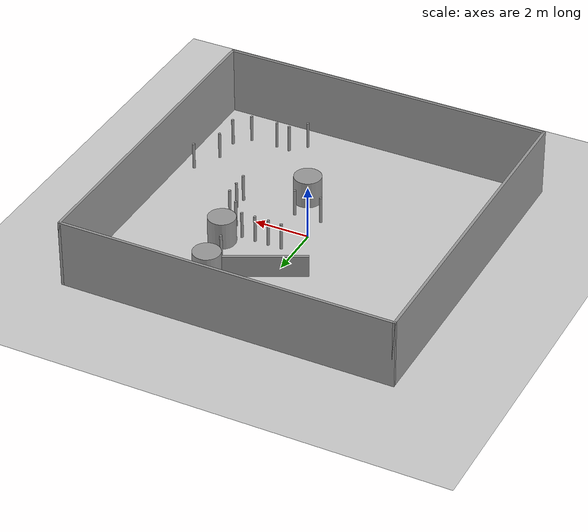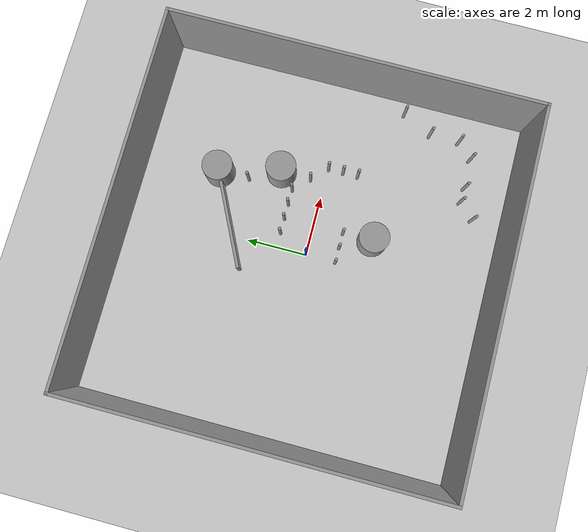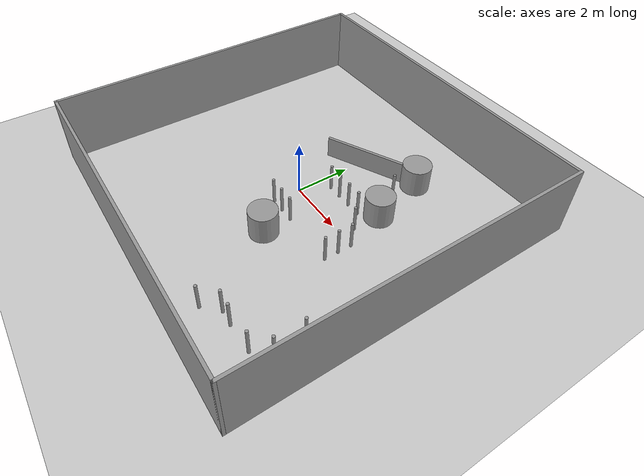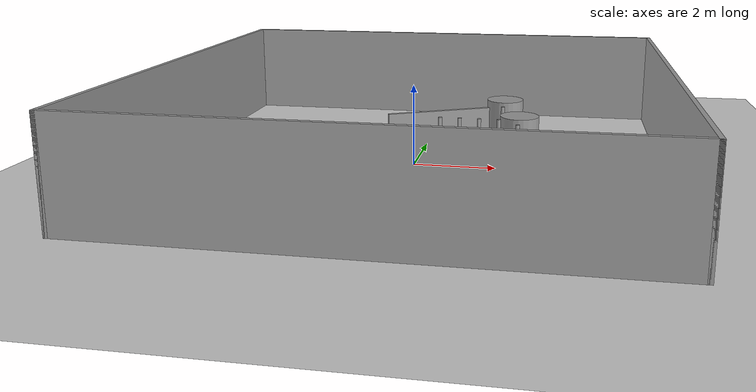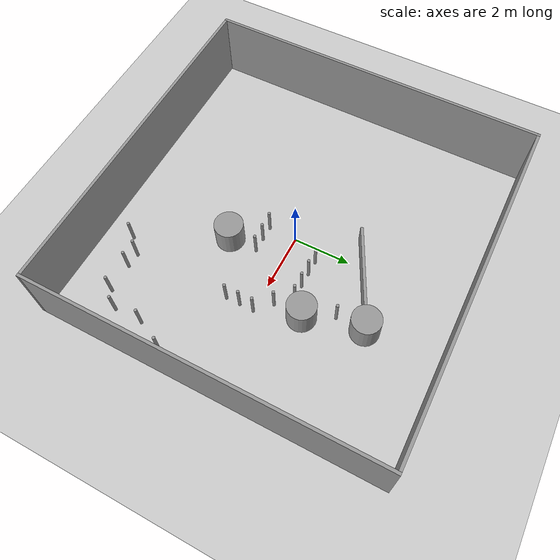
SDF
<sdf version="1.7">
 <world name="default">
  <model name="ground_plane">
   <static>1</static>
   <link name="link">
    <collision name="collision">
     <geometry><plane><normal>0 0 1</normal><size>100 100</size></plane></geometry>
     <surface>
      <contact><collide_bitmask>65535</collide_bitmask></contact>
      <friction><ode><mu>100</mu><mu2>50</mu2></ode></friction>
     </surface>
    </collision>
    <visual name="visual">
     <cast_shadows>0</cast_shadows>
     <geometry><plane><normal>0 0 1</normal><size>100 100</size></plane></geometry>
     <material>
      <script><uri>file://media/materials/scripts/gazebo.material</uri><name>Gazebo/Grey</name></script>
     </material>
    </visual>
   </link>
  </model>
  <model name="Cylindar_r01_clone_0">
   <link name="link_0">
    <inertial>
     <mass>1</mass>
     <inertia><ixx>0.145833</ixx><ixy>0</ixy><ixz>0</ixz><iyy>0.145833</iyy><iyz>0</iyz><izz>0.125</izz></inertia>
    </inertial>
    <visual name="visual">
     <geometry><cylinder><radius>0.05</radius><length>1</length></cylinder></geometry>
     <material>
      <lighting>1</lighting>
      <script><uri>file://media/materials/scripts/gazebo.material</uri><name>Gazebo/Grey</name></script>
      <shader type="pixel"><normal_map>__default__</normal_map></shader>
      <ambient>0.3 0.3 0.3 1</ambient>
      <diffuse>0.7 0.7 0.7 1</diffuse>
      <specular>0.01 0.01 0.01 1</specular>
      <emissive>0 0 0 1</emissive>
     </material>
    </visual>
    <collision name="collision">
     <geometry><cylinder><radius>0.05</radius><length>1</length></cylinder></geometry>
     <surface>
      <friction>
       <ode><mu>1</mu><mu2>1</mu2><fdir1>0 0 0</fdir1><slip1>0</slip1><slip2>0</slip2></ode>
       <torsional>
        <coefficient>1</coefficient>
        <patch_radius>0</patch_radius>
        <surface_radius>0</surface_radius>
        <use_patch_radius>1</use_patch_radius>
        <ode><slip>0</slip></ode>
       </torsional>
      </friction>
      <bounce><restitution_coefficient>0</restitution_coefficient><threshold>1e+06</threshold></bounce>
      <contact>
       <collide_without_contact>0</collide_without_contact>
       <collide_without_contact_bitmask>1</collide_without_contact_bitmask>
       <collide_bitmask>1</collide_bitmask>
       <ode>
        <soft_cfm>0</soft_cfm>
        <soft_erp>0.2</soft_erp>
        <kp>1e+13</kp>
        <kd>1</kd>
        <max_vel>0.01</max_vel>
        <min_depth>0</min_depth>
       </ode>
       <bullet>
        <split_impulse>1</split_impulse>
        <split_impulse_penetration_threshold>-0.01</split_impulse_penetration_threshold>
        <soft_cfm>0</soft_cfm>
        <soft_erp>0.2</soft_erp>
        <kp>1e+13</kp>
        <kd>1</kd>
       </bullet>
      </contact>
     </surface>
    </collision>
   </link>
   <static>0</static>
   <pose>0.5 1 0.5 0 -0 0</pose>
  </model>
  <model name="Cylindar_r01_clone_1">
   <link name="link_0">
    <inertial>
     <mass>1</mass>
     <inertia><ixx>0.145833</ixx><ixy>0</ixy><ixz>0</ixz><iyy>0.145833</iyy><iyz>0</iyz><izz>0.125</izz></inertia>
    </inertial>
    <visual name="visual">
     <geometry><cylinder><radius>0.05</radius><length>1</length></cylinder></geometry>
     <material>
      <lighting>1</lighting>
      <script><uri>file://media/materials/scripts/gazebo.material</uri><name>Gazebo/Grey</name></script>
      <shader type="pixel"><normal_map>__default__</normal_map></shader>
      <ambient>0.3 0.3 0.3 1</ambient>
      <diffuse>0.7 0.7 0.7 1</diffuse>
      <specular>0.01 0.01 0.01 1</specular>
      <emissive>0 0 0 1</emissive>
     </material>
    </visual>
    <collision name="collision">
     <geometry><cylinder><radius>0.05</radius><length>1</length></cylinder></geometry>
     <surface>
      <friction>
       <ode><mu>1</mu><mu2>1</mu2><fdir1>0 0 0</fdir1><slip1>0</slip1><slip2>0</slip2></ode>
       <torsional>
        <coefficient>1</coefficient>
        <patch_radius>0</patch_radius>
        <surface_radius>0</surface_radius>
        <use_patch_radius>1</use_patch_radius>
        <ode><slip>0</slip></ode>
       </torsional>
      </friction>
      <bounce><restitution_coefficient>0</restitution_coefficient><threshold>1e+06</threshold></bounce>
      <contact>
       <collide_without_contact>0</collide_without_contact>
       <collide_without_contact_bitmask>1</collide_without_contact_bitmask>
       <collide_bitmask>1</collide_bitmask>
       <ode>
        <soft_cfm>0</soft_cfm>
        <soft_erp>0.2</soft_erp>
        <kp>1e+13</kp>
        <kd>1</kd>
        <max_vel>0.01</max_vel>
        <min_depth>0</min_depth>
       </ode>
       <bullet>
        <split_impulse>1</split_impulse>
        <split_impulse_penetration_threshold>-0.01</split_impulse_penetration_threshold>
        <soft_cfm>0</soft_cfm>
        <soft_erp>0.2</soft_erp>
        <kp>1e+13</kp>
        <kd>1</kd>
       </bullet>
      </contact>
     </surface>
    </collision>
   </link>
   <static>0</static>
   <pose>1.5 1 0.5 0 -0 0</pose>
  </model>
  <model name="Cylindar_r01_clone_2">
   <link name="link_0">
    <inertial>
     <mass>1</mass>
     <inertia><ixx>0.145833</ixx><ixy>0</ixy><ixz>0</ixz><iyy>0.145833</iyy><iyz>0</iyz><izz>0.125</izz></inertia>
    </inertial>
    <visual name="visual">
     <geometry><cylinder><radius>0.05</radius><length>1</length></cylinder></geometry>
     <material>
      <lighting>1</lighting>
      <script><uri>file://media/materials/scripts/gazebo.material</uri><name>Gazebo/Grey</name></script>
      <shader type="pixel"><normal_map>__default__</normal_map></shader>
      <ambient>0.3 0.3 0.3 1</ambient>
      <diffuse>0.7 0.7 0.7 1</diffuse>
      <specular>0.01 0.01 0.01 1</specular>
      <emissive>0 0 0 1</emissive>
     </material>
    </visual>
    <collision name="collision">
     <geometry><cylinder><radius>0.05</radius><length>1</length></cylinder></geometry>
     <surface>
      <friction>
       <ode><mu>1</mu><mu2>1</mu2><fdir1>0 0 0</fdir1><slip1>0</slip1><slip2>0</slip2></ode>
       <torsional>
        <coefficient>1</coefficient>
        <patch_radius>0</patch_radius>
        <surface_radius>0</surface_radius>
        <use_patch_radius>1</use_patch_radius>
        <ode><slip>0</slip></ode>
       </torsional>
      </friction>
      <bounce><restitution_coefficient>0</restitution_coefficient><threshold>1e+06</threshold></bounce>
      <contact>
       <collide_without_contact>0</collide_without_contact>
       <collide_without_contact_bitmask>1</collide_without_contact_bitmask>
       <collide_bitmask>1</collide_bitmask>
       <ode>
        <soft_cfm>0</soft_cfm>
        <soft_erp>0.2</soft_erp>
        <kp>1e+13</kp>
        <kd>1</kd>
        <max_vel>0.01</max_vel>
        <min_depth>0</min_depth>
       </ode>
       <bullet>
        <split_impulse>1</split_impulse>
        <split_impulse_penetration_threshold>-0.01</split_impulse_penetration_threshold>
        <soft_cfm>0</soft_cfm>
        <soft_erp>0.2</soft_erp>
        <kp>1e+13</kp>
        <kd>1</kd>
       </bullet>
      </contact>
     </surface>
    </collision>
   </link>
   <static>0</static>
   <pose>2 1 0.5 0 -0 0</pose>
  </model>
  <model name="Cylindar_r01_clone_7">
   <link name="link_0">
    <inertial>
     <mass>1</mass>
     <inertia><ixx>0.145833</ixx><ixy>0</ixy><ixz>0</ixz><iyy>0.145833</iyy><iyz>0</iyz><izz>0.125</izz></inertia>
    </inertial>
    <visual name="visual">
     <geometry><cylinder><radius>0.05</radius><length>1</length></cylinder></geometry>
     <material>
      <lighting>1</lighting>
      <script><uri>file://media/materials/scripts/gazebo.material</uri><name>Gazebo/Grey</name></script>
      <shader type="pixel"><normal_map>__default__</normal_map></shader>
      <ambient>0.3 0.3 0.3 1</ambient>
      <diffuse>0.7 0.7 0.7 1</diffuse>
      <specular>0.01 0.01 0.01 1</specular>
      <emissive>0 0 0 1</emissive>
     </material>
    </visual>
    <collision name="collision">
     <geometry><cylinder><radius>0.05</radius><length>1</length></cylinder></geometry>
     <surface>
      <friction>
       <ode><mu>1</mu><mu2>1</mu2><fdir1>0 0 0</fdir1><slip1>0</slip1><slip2>0</slip2></ode>
       <torsional>
        <coefficient>1</coefficient>
        <patch_radius>0</patch_radius>
        <surface_radius>0</surface_radius>
        <use_patch_radius>1</use_patch_radius>
        <ode><slip>0</slip></ode>
       </torsional>
      </friction>
      <bounce><restitution_coefficient>0</restitution_coefficient><threshold>1e+06</threshold></bounce>
      <contact>
       <collide_without_contact>0</collide_without_contact>
       <collide_without_contact_bitmask>1</collide_without_contact_bitmask>
       <collide_bitmask>1</collide_bitmask>
       <ode>
        <soft_cfm>0</soft_cfm>
        <soft_erp>0.2</soft_erp>
        <kp>1e+13</kp>
        <kd>1</kd>
        <max_vel>0.01</max_vel>
        <min_depth>0</min_depth>
       </ode>
       <bullet>
        <split_impulse>1</split_impulse>
        <split_impulse_penetration_threshold>-0.01</split_impulse_penetration_threshold>
        <soft_cfm>0</soft_cfm>
        <soft_erp>0.2</soft_erp>
        <kp>1e+13</kp>
        <kd>1</kd>
       </bullet>
      </contact>
     </surface>
    </collision>
   </link>
   <static>0</static>
   <pose>1 -1 0.5 0 -0 0</pose>
  </model>
  <model name="Cylindar_r01_clone_8">
   <link name="link_0">
    <inertial>
     <mass>1</mass>
     <inertia><ixx>0.145833</ixx><ixy>0</ixy><ixz>0</ixz><iyy>0.145833</iyy><iyz>0</iyz><izz>0.125</izz></inertia>
    </inertial>
    <visual name="visual">
     <geometry><cylinder><radius>0.05</radius><length>1</length></cylinder></geometry>
     <material>
      <lighting>1</lighting>
      <script><uri>file://media/materials/scripts/gazebo.material</uri><name>Gazebo/Grey</name></script>
      <shader type="pixel"><normal_map>__default__</normal_map></shader>
      <ambient>0.3 0.3 0.3 1</ambient>
      <diffuse>0.7 0.7 0.7 1</diffuse>
      <specular>0.01 0.01 0.01 1</specular>
      <emissive>0 0 0 1</emissive>
     </material>
    </visual>
    <collision name="collision">
     <geometry><cylinder><radius>0.05</radius><length>1</length></cylinder></geometry>
     <surface>
      <friction>
       <ode><mu>1</mu><mu2>1</mu2><fdir1>0 0 0</fdir1><slip1>0</slip1><slip2>0</slip2></ode>
       <torsional>
        <coefficient>1</coefficient>
        <patch_radius>0</patch_radius>
        <surface_radius>0</surface_radius>
        <use_patch_radius>1</use_patch_radius>
        <ode><slip>0</slip></ode>
       </torsional>
      </friction>
      <bounce><restitution_coefficient>0</restitution_coefficient><threshold>1e+06</threshold></bounce>
      <contact>
       <collide_without_contact>0</collide_without_contact>
       <collide_without_contact_bitmask>1</collide_without_contact_bitmask>
       <collide_bitmask>1</collide_bitmask>
       <ode>
        <soft_cfm>0</soft_cfm>
        <soft_erp>0.2</soft_erp>
        <kp>1e+13</kp>
        <kd>1</kd>
        <max_vel>0.01</max_vel>
        <min_depth>0</min_depth>
       </ode>
       <bullet>
        <split_impulse>1</split_impulse>
        <split_impulse_penetration_threshold>-0.01</split_impulse_penetration_threshold>
        <soft_cfm>0</soft_cfm>
        <soft_erp>0.2</soft_erp>
        <kp>1e+13</kp>
        <kd>1</kd>
       </bullet>
      </contact>
     </surface>
    </collision>
   </link>
   <static>0</static>
   <pose>0.5 -1 0.5 0 -0 0</pose>
  </model>
  <model name="Cylindar_r01_clone_9">
   <link name="link_0">
    <inertial>
     <mass>1</mass>
     <inertia><ixx>0.145833</ixx><ixy>0</ixy><ixz>0</ixz><iyy>0.145833</iyy><iyz>0</iyz><izz>0.125</izz></inertia>
    </inertial>
    <visual name="visual">
     <geometry><cylinder><radius>0.05</radius><length>1</length></cylinder></geometry>
     <material>
      <lighting>1</lighting>
      <script><uri>file://media/materials/scripts/gazebo.material</uri><name>Gazebo/Grey</name></script>
      <shader type="pixel"><normal_map>__default__</normal_map></shader>
      <ambient>0.3 0.3 0.3 1</ambient>
      <diffuse>0.7 0.7 0.7 1</diffuse>
      <specular>0.01 0.01 0.01 1</specular>
      <emissive>0 0 0 1</emissive>
     </material>
    </visual>
    <collision name="collision">
     <geometry><cylinder><radius>0.05</radius><length>1</length></cylinder></geometry>
     <surface>
      <friction>
       <ode><mu>1</mu><mu2>1</mu2><fdir1>0 0 0</fdir1><slip1>0</slip1><slip2>0</slip2></ode>
       <torsional>
        <coefficient>1</coefficient>
        <patch_radius>0</patch_radius>
        <surface_radius>0</surface_radius>
        <use_patch_radius>1</use_patch_radius>
        <ode><slip>0</slip></ode>
       </torsional>
      </friction>
      <bounce><restitution_coefficient>0</restitution_coefficient><threshold>1e+06</threshold></bounce>
      <contact>
       <collide_without_contact>0</collide_without_contact>
       <collide_without_contact_bitmask>1</collide_without_contact_bitmask>
       <collide_bitmask>1</collide_bitmask>
       <ode>
        <soft_cfm>0</soft_cfm>
        <soft_erp>0.2</soft_erp>
        <kp>1e+13</kp>
        <kd>1</kd>
        <max_vel>0.01</max_vel>
        <min_depth>0</min_depth>
       </ode>
       <bullet>
        <split_impulse>1</split_impulse>
        <split_impulse_penetration_threshold>-0.01</split_impulse_penetration_threshold>
        <soft_cfm>0</soft_cfm>
        <soft_erp>0.2</soft_erp>
        <kp>1e+13</kp>
        <kd>1</kd>
       </bullet>
      </contact>
     </surface>
    </collision>
   </link>
   <static>0</static>
   <pose>0 -1 0.5 0 -0 0</pose>
  </model>
  <model name="wall_square">
   <link name="Wall_10">
    <collision name="Wall_10_Collision">
     <geometry><box><size>12.2 0.1 2.5</size></box></geometry>
     <pose>0 0 1.25 0 -0 0</pose>
    </collision>
    <visual name="Wall_10_Visual">
     <pose>0 0 1.25 0 -0 0</pose>
     <geometry><box><size>12.2 0.1 2.5</size></box></geometry>
     <material>
      <script><uri>file://media/materials/scripts/gazebo.material</uri><name>Gazebo/Grey</name></script>
      <ambient>1 1 1 1</ambient>
     </material>
     <meta><layer>0</layer></meta>
    </visual>
    <pose>6.05 0 0 0 -0 -1.5708</pose>
   </link>
   <link name="Wall_4">
    <collision name="Wall_4_Collision">
     <geometry><box><size>12.2 0.1 2.5</size></box></geometry>
     <pose>0 0 1.25 0 -0 0</pose>
    </collision>
    <visual name="Wall_4_Visual">
     <pose>0 0 1.25 0 -0 0</pose>
     <geometry><box><size>12.2 0.1 2.5</size></box></geometry>
     <material>
      <script><uri>file://media/materials/scripts/gazebo.material</uri><name>Gazebo/Grey</name></script>
      <ambient>1 1 1 1</ambient>
     </material>
     <meta><layer>0</layer></meta>
    </visual>
    <pose>0 6.05 0 0 -0 0</pose>
   </link>
   <link name="Wall_6">
    <collision name="Wall_6_Collision">
     <geometry><box><size>12.2 0.1 2.5</size></box></geometry>
     <pose>0 0 1.25 0 -0 0</pose>
    </collision>
    <visual name="Wall_6_Visual">
     <pose>0 0 1.25 0 -0 0</pose>
     <geometry><box><size>12.2 0.1 2.5</size></box></geometry>
     <material>
      <script><uri>file://media/materials/scripts/gazebo.material</uri><name>Gazebo/Grey</name></script>
      <ambient>1 1 1 1</ambient>
     </material>
     <meta><layer>0</layer></meta>
    </visual>
    <pose>-6.05 0 0 0 -0 -1.5708</pose>
   </link>
   <link name="Wall_8">
    <collision name="Wall_8_Collision">
     <geometry><box><size>12.2 0.1 2.5</size></box></geometry>
     <pose>0 0 1.25 0 -0 0</pose>
    </collision>
    <visual name="Wall_8_Visual">
     <pose>0 0 1.25 0 -0 0</pose>
     <geometry><box><size>12.2 0.1 2.5</size></box></geometry>
     <material>
      <script><uri>file://media/materials/scripts/gazebo.material</uri><name>Gazebo/Grey</name></script>
      <ambient>1 1 1 1</ambient>
     </material>
     <meta><layer>0</layer></meta>
    </visual>
    <pose>0 -6.05 0 0 -0 0</pose>
   </link>
   <static>1</static>
  </model>
  <model name="Cylindar_r01_clone_2_clone">
   <link name="link_0">
    <inertial>
     <mass>1</mass>
     <inertia><ixx>0.145833</ixx><ixy>0</ixy><ixz>0</ixz><iyy>0.145833</iyy><iyz>0</iyz><izz>0.125</izz></inertia>
    </inertial>
    <visual name="visual">
     <geometry><cylinder><radius>0.05</radius><length>1</length></cylinder></geometry>
     <material>
      <lighting>1</lighting>
      <script><uri>file://media/materials/scripts/gazebo.material</uri><name>Gazebo/Grey</name></script>
      <shader type="pixel"><normal_map>__default__</normal_map></shader>
      <ambient>0.3 0.3 0.3 1</ambient>
      <diffuse>0.7 0.7 0.7 1</diffuse>
      <specular>0.01 0.01 0.01 1</specular>
      <emissive>0 0 0 1</emissive>
     </material>
    </visual>
    <collision name="collision">
     <geometry><cylinder><radius>0.05</radius><length>1</length></cylinder></geometry>
     <surface>
      <friction>
       <ode><mu>1</mu><mu2>1</mu2><fdir1>0 0 0</fdir1><slip1>0</slip1><slip2>0</slip2></ode>
       <torsional>
        <coefficient>1</coefficient>
        <patch_radius>0</patch_radius>
        <surface_radius>0</surface_radius>
        <use_patch_radius>1</use_patch_radius>
        <ode><slip>0</slip></ode>
       </torsional>
      </friction>
      <bounce><restitution_coefficient>0</restitution_coefficient><threshold>1e+06</threshold></bounce>
      <contact>
       <collide_without_contact>0</collide_without_contact>
       <collide_without_contact_bitmask>1</collide_without_contact_bitmask>
       <collide_bitmask>1</collide_bitmask>
       <ode>
        <soft_cfm>0</soft_cfm>
        <soft_erp>0.2</soft_erp>
        <kp>1e+13</kp>
        <kd>1</kd>
        <max_vel>0.01</max_vel>
        <min_depth>0</min_depth>
       </ode>
       <bullet>
        <split_impulse>1</split_impulse>
        <split_impulse_penetration_threshold>-0.01</split_impulse_penetration_threshold>
        <soft_cfm>0</soft_cfm>
        <soft_erp>0.2</soft_erp>
        <kp>1e+13</kp>
        <kd>1</kd>
       </bullet>
      </contact>
     </surface>
    </collision>
   </link>
   <static>0</static>
   <pose>2.5 0.5 0.5 0 -0 0</pose>
  </model>
  <model name="Cylindar_r01_clone_2_clone_0">
   <link name="link_0">
    <inertial>
     <mass>1</mass>
     <inertia><ixx>0.145833</ixx><ixy>0</ixy><ixz>0</ixz><iyy>0.145833</iyy><iyz>0</iyz><izz>0.125</izz></inertia>
    </inertial>
    <visual name="visual">
     <geometry><cylinder><radius>0.05</radius><length>1</length></cylinder></geometry>
     <material>
      <lighting>1</lighting>
      <script><uri>file://media/materials/scripts/gazebo.material</uri><name>Gazebo/Grey</name></script>
      <shader type="pixel"><normal_map>__default__</normal_map></shader>
      <ambient>0.3 0.3 0.3 1</ambient>
      <diffuse>0.7 0.7 0.7 1</diffuse>
      <specular>0.01 0.01 0.01 1</specular>
      <emissive>0 0 0 1</emissive>
     </material>
    </visual>
    <collision name="collision">
     <geometry><cylinder><radius>0.05</radius><length>1</length></cylinder></geometry>
     <surface>
      <friction>
       <ode><mu>1</mu><mu2>1</mu2><fdir1>0 0 0</fdir1><slip1>0</slip1><slip2>0</slip2></ode>
       <torsional>
        <coefficient>1</coefficient>
        <patch_radius>0</patch_radius>
        <surface_radius>0</surface_radius>
        <use_patch_radius>1</use_patch_radius>
        <ode><slip>0</slip></ode>
       </torsional>
      </friction>
      <bounce><restitution_coefficient>0</restitution_coefficient><threshold>1e+06</threshold></bounce>
      <contact>
       <collide_without_contact>0</collide_without_contact>
       <collide_without_contact_bitmask>1</collide_without_contact_bitmask>
       <collide_bitmask>1</collide_bitmask>
       <ode>
        <soft_cfm>0</soft_cfm>
        <soft_erp>0.2</soft_erp>
        <kp>1e+13</kp>
        <kd>1</kd>
        <max_vel>0.01</max_vel>
        <min_depth>0</min_depth>
       </ode>
       <bullet>
        <split_impulse>1</split_impulse>
        <split_impulse_penetration_threshold>-0.01</split_impulse_penetration_threshold>
        <soft_cfm>0</soft_cfm>
        <soft_erp>0.2</soft_erp>
        <kp>1e+13</kp>
        <kd>1</kd>
       </bullet>
      </contact>
     </surface>
    </collision>
   </link>
   <static>0</static>
   <pose>3 0 0.5 0 -0 0</pose>
  </model>
  <model name="Cylindar_r01_clone_2_clone_1">
   <link name="link_0">
    <inertial>
     <mass>1</mass>
     <inertia><ixx>0.145833</ixx><ixy>0</ixy><ixz>0</ixz><iyy>0.145833</iyy><iyz>0</iyz><izz>0.125</izz></inertia>
    </inertial>
    <visual name="visual">
     <geometry><cylinder><radius>0.05</radius><length>1</length></cylinder></geometry>
     <material>
      <lighting>1</lighting>
      <script><uri>file://media/materials/scripts/gazebo.material</uri><name>Gazebo/Grey</name></script>
      <shader type="pixel"><normal_map>__default__</normal_map></shader>
      <ambient>0.3 0.3 0.3 1</ambient>
      <diffuse>0.7 0.7 0.7 1</diffuse>
      <specular>0.01 0.01 0.01 1</specular>
      <emissive>0 0 0 1</emissive>
     </material>
    </visual>
    <collision name="collision">
     <geometry><cylinder><radius>0.05</radius><length>1</length></cylinder></geometry>
     <surface>
      <friction>
       <ode><mu>1</mu><mu2>1</mu2><fdir1>0 0 0</fdir1><slip1>0</slip1><slip2>0</slip2></ode>
       <torsional>
        <coefficient>1</coefficient>
        <patch_radius>0</patch_radius>
        <surface_radius>0</surface_radius>
        <use_patch_radius>1</use_patch_radius>
        <ode><slip>0</slip></ode>
       </torsional>
      </friction>
      <bounce><restitution_coefficient>0</restitution_coefficient><threshold>1e+06</threshold></bounce>
      <contact>
       <collide_without_contact>0</collide_without_contact>
       <collide_without_contact_bitmask>1</collide_without_contact_bitmask>
       <collide_bitmask>1</collide_bitmask>
       <ode>
        <soft_cfm>0</soft_cfm>
        <soft_erp>0.2</soft_erp>
        <kp>1e+13</kp>
        <kd>1</kd>
        <max_vel>0.01</max_vel>
        <min_depth>0</min_depth>
       </ode>
       <bullet>
        <split_impulse>1</split_impulse>
        <split_impulse_penetration_threshold>-0.01</split_impulse_penetration_threshold>
        <soft_cfm>0</soft_cfm>
        <soft_erp>0.2</soft_erp>
        <kp>1e+13</kp>
        <kd>1</kd>
       </bullet>
      </contact>
     </surface>
    </collision>
   </link>
   <static>0</static>
   <pose>3 -0.5 0.5 0 -0 0</pose>
  </model>
  <model name="Cylindar_r01_clone_2_clone_2">
   <link name="link_0">
    <inertial>
     <mass>1</mass>
     <inertia><ixx>0.145833</ixx><ixy>0</ixy><ixz>0</ixz><iyy>0.145833</iyy><iyz>0</iyz><izz>0.125</izz></inertia>
    </inertial>
    <visual name="visual">
     <geometry><cylinder><radius>0.05</radius><length>1</length></cylinder></geometry>
     <material>
      <lighting>1</lighting>
      <script><uri>file://media/materials/scripts/gazebo.material</uri><name>Gazebo/Grey</name></script>
      <shader type="pixel"><normal_map>__default__</normal_map></shader>
      <ambient>0.3 0.3 0.3 1</ambient>
      <diffuse>0.7 0.7 0.7 1</diffuse>
      <specular>0.01 0.01 0.01 1</specular>
      <emissive>0 0 0 1</emissive>
     </material>
    </visual>
    <collision name="collision">
     <geometry><cylinder><radius>0.05</radius><length>1</length></cylinder></geometry>
     <surface>
      <friction>
       <ode><mu>1</mu><mu2>1</mu2><fdir1>0 0 0</fdir1><slip1>0</slip1><slip2>0</slip2></ode>
       <torsional>
        <coefficient>1</coefficient>
        <patch_radius>0</patch_radius>
        <surface_radius>0</surface_radius>
        <use_patch_radius>1</use_patch_radius>
        <ode><slip>0</slip></ode>
       </torsional>
      </friction>
      <bounce><restitution_coefficient>0</restitution_coefficient><threshold>1e+06</threshold></bounce>
      <contact>
       <collide_without_contact>0</collide_without_contact>
       <collide_without_contact_bitmask>1</collide_without_contact_bitmask>
       <collide_bitmask>1</collide_bitmask>
       <ode>
        <soft_cfm>0</soft_cfm>
        <soft_erp>0.2</soft_erp>
        <kp>1e+13</kp>
        <kd>1</kd>
        <max_vel>0.01</max_vel>
        <min_depth>0</min_depth>
       </ode>
       <bullet>
        <split_impulse>1</split_impulse>
        <split_impulse_penetration_threshold>-0.01</split_impulse_penetration_threshold>
        <soft_cfm>0</soft_cfm>
        <soft_erp>0.2</soft_erp>
        <kp>1e+13</kp>
        <kd>1</kd>
       </bullet>
      </contact>
     </surface>
    </collision>
   </link>
   <static>0</static>
   <pose>3 -1 0.5 0 -0 0</pose>
  </model>
  <model name="Cylindar_r01_clone_0_clone">
   <link name="link_0">
    <inertial>
     <mass>1</mass>
     <inertia><ixx>0.145833</ixx><ixy>0</ixy><ixz>0</ixz><iyy>0.145833</iyy><iyz>0</iyz><izz>0.125</izz></inertia>
    </inertial>
    <visual name="visual">
     <geometry><cylinder><radius>0.05</radius><length>1</length></cylinder></geometry>
     <material>
      <lighting>1</lighting>
      <script><uri>file://media/materials/scripts/gazebo.material</uri><name>Gazebo/Grey</name></script>
      <shader type="pixel"><normal_map>__default__</normal_map></shader>
      <ambient>0.3 0.3 0.3 1</ambient>
      <diffuse>0.7 0.7 0.7 1</diffuse>
      <specular>0.01 0.01 0.01 1</specular>
      <emissive>0 0 0 1</emissive>
     </material>
    </visual>
    <collision name="collision">
     <geometry><cylinder><radius>0.05</radius><length>1</length></cylinder></geometry>
     <surface>
      <friction>
       <ode><mu>1</mu><mu2>1</mu2><fdir1>0 0 0</fdir1><slip1>0</slip1><slip2>0</slip2></ode>
       <torsional>
        <coefficient>1</coefficient>
        <patch_radius>0</patch_radius>
        <surface_radius>0</surface_radius>
        <use_patch_radius>1</use_patch_radius>
        <ode><slip>0</slip></ode>
       </torsional>
      </friction>
      <bounce><restitution_coefficient>0</restitution_coefficient><threshold>1e+06</threshold></bounce>
      <contact>
       <collide_without_contact>0</collide_without_contact>
       <collide_without_contact_bitmask>1</collide_without_contact_bitmask>
       <collide_bitmask>1</collide_bitmask>
       <ode>
        <soft_cfm>0</soft_cfm>
        <soft_erp>0.2</soft_erp>
        <kp>1e+13</kp>
        <kd>1</kd>
        <max_vel>0.01</max_vel>
        <min_depth>0</min_depth>
       </ode>
       <bullet>
        <split_impulse>1</split_impulse>
        <split_impulse_penetration_threshold>-0.01</split_impulse_penetration_threshold>
        <soft_cfm>0</soft_cfm>
        <soft_erp>0.2</soft_erp>
        <kp>1e+13</kp>
        <kd>1</kd>
       </bullet>
      </contact>
     </surface>
    </collision>
   </link>
   <static>0</static>
   <pose>1 1 0.5 0 -0 0</pose>
  </model>
  <model name="unit_cylinder">
   <pose>2.5 1.5 0.5 0 -0 0</pose>
   <link name="link">
    <inertial>
     <mass>1</mass>
     <inertia><ixx>0.145833</ixx><ixy>0</ixy><ixz>0</ixz><iyy>0.145833</iyy><iyz>0</iyz><izz>0.125</izz></inertia>
    </inertial>
    <collision name="collision">
     <geometry><cylinder><radius>0.5</radius><length>1</length></cylinder></geometry>
    </collision>
    <visual name="visual">
     <geometry><cylinder><radius>0.5</radius><length>1</length></cylinder></geometry>
     <material>
      <script><name>Gazebo/Grey</name><uri>file://media/materials/scripts/gazebo.material</uri></script>
     </material>
    </visual>
   </link>
  </model>
  <model name="unit_cylinder_0">
   <pose>1 -2 0.5 0 -0 0</pose>
   <link name="link">
    <inertial>
     <mass>1</mass>
     <inertia><ixx>0.145833</ixx><ixy>0</ixy><ixz>0</ixz><iyy>0.145833</iyy><iyz>0</iyz><izz>0.125</izz></inertia>
    </inertial>
    <collision name="collision">
     <geometry><cylinder><radius>0.5</radius><length>1</length></cylinder></geometry>
    </collision>
    <visual name="visual">
     <geometry><cylinder><radius>0.5</radius><length>1</length></cylinder></geometry>
     <material>
      <script><name>Gazebo/Grey</name><uri>file://media/materials/scripts/gazebo.material</uri></script>
     </material>
    </visual>
   </link>
  </model>
  <model name="unit_cylinder_1">
   <pose>2 3.5 0.5 0 -0 0</pose>
   <link name="link">
    <inertial>
     <mass>1</mass>
     <inertia><ixx>0.145833</ixx><ixy>0</ixy><ixz>0</ixz><iyy>0.145833</iyy><iyz>0</iyz><izz>0.125</izz></inertia>
    </inertial>
    <collision name="collision">
     <geometry><cylinder><radius>0.5</radius><length>1</length></cylinder></geometry>
    </collision>
    <visual name="visual">
     <geometry><cylinder><radius>0.5</radius><length>1</length></cylinder></geometry>
     <material>
      <script><name>Gazebo/Grey</name><uri>file://media/materials/scripts/gazebo.material</uri></script>
     </material>
    </visual>
   </link>
  </model>
  <model name="wall_connected_1">
   <pose>0.5 1.78354 0 0 -0 0</pose>
   <link name="Wall_14">
    <collision name="Wall_14_Collision">
     <geometry><box><size>3.4541 0.1 0.8</size></box></geometry>
     <pose>0 0 0.4 0 -0 0</pose>
    </collision>
    <visual name="Wall_14_Visual">
     <pose>0 0 0.4 0 -0 0</pose>
     <geometry><box><size>3.4541 0.1 0.8</size></box></geometry>
     <material>
      <script><uri>file://media/materials/scripts/gazebo.material</uri><name>Gazebo/Grey</name></script>
      <ambient>1 1 1 1</ambient>
     </material>
     <meta><layer>0</layer></meta>
    </visual>
    <pose>0 0.966459 0 0 -0 0.463648</pose>
   </link>
   <static>1</static>
  </model>
  <model name="Cylindar_r01_clone_2_clone_3">
   <link name="link_0">
    <inertial>
     <mass>1</mass>
     <inertia><ixx>0.145833</ixx><ixy>0</ixy><ixz>0</ixz><iyy>0.145833</iyy><iyz>0</iyz><izz>0.125</izz></inertia>
    </inertial>
    <visual name="visual">
     <geometry><cylinder><radius>0.05</radius><length>1</length></cylinder></geometry>
     <material>
      <lighting>1</lighting>
      <script><uri>file://media/materials/scripts/gazebo.material</uri><name>Gazebo/Grey</name></script>
      <shader type="pixel"><normal_map>__default__</normal_map></shader>
      <ambient>0.3 0.3 0.3 1</ambient>
      <diffuse>0.7 0.7 0.7 1</diffuse>
      <specular>0.01 0.01 0.01 1</specular>
      <emissive>0 0 0 1</emissive>
     </material>
    </visual>
    <collision name="collision">
     <geometry><cylinder><radius>0.05</radius><length>1</length></cylinder></geometry>
     <surface>
      <friction>
       <ode><mu>1</mu><mu2>1</mu2><fdir1>0 0 0</fdir1><slip1>0</slip1><slip2>0</slip2></ode>
       <torsional>
        <coefficient>1</coefficient>
        <patch_radius>0</patch_radius>
        <surface_radius>0</surface_radius>
        <use_patch_radius>1</use_patch_radius>
        <ode><slip>0</slip></ode>
       </torsional>
      </friction>
      <bounce><restitution_coefficient>0</restitution_coefficient><threshold>1e+06</threshold></bounce>
      <contact>
       <collide_without_contact>0</collide_without_contact>
       <collide_without_contact_bitmask>1</collide_without_contact_bitmask>
       <collide_bitmask>1</collide_bitmask>
       <ode>
        <soft_cfm>0</soft_cfm>
        <soft_erp>0.2</soft_erp>
        <kp>1e+13</kp>
        <kd>1</kd>
        <max_vel>0.01</max_vel>
        <min_depth>0</min_depth>
       </ode>
       <bullet>
        <split_impulse>1</split_impulse>
        <split_impulse_penetration_threshold>-0.01</split_impulse_penetration_threshold>
        <soft_cfm>0</soft_cfm>
        <soft_erp>0.2</soft_erp>
        <kp>1e+13</kp>
        <kd>1</kd>
       </bullet>
      </contact>
     </surface>
    </collision>
   </link>
   <static>0</static>
   <pose>2 2.5 0.5 0 -0 0</pose>
  </model>
  <model name="Cylindar_r01_clone_2_clone_2_clone">
   <link name="link_0">
    <inertial>
     <mass>1</mass>
     <inertia><ixx>0.145833</ixx><ixy>0</ixy><ixz>0</ixz><iyy>0.145833</iyy><iyz>0</iyz><izz>0.125</izz></inertia>
    </inertial>
    <visual name="visual">
     <geometry><cylinder><radius>0.05</radius><length>1</length></cylinder></geometry>
     <material>
      <lighting>1</lighting>
      <script><uri>file://media/materials/scripts/gazebo.material</uri><name>Gazebo/Grey</name></script>
      <shader type="pixel"><normal_map>__default__</normal_map></shader>
      <ambient>0.3 0.3 0.3 1</ambient>
      <diffuse>0.7 0.7 0.7 1</diffuse>
      <specular>0.01 0.01 0.01 1</specular>
      <emissive>0 0 0 1</emissive>
     </material>
    </visual>
    <collision name="collision">
     <geometry><cylinder><radius>0.05</radius><length>1</length></cylinder></geometry>
     <surface>
      <friction>
       <ode><mu>1</mu><mu2>1</mu2><fdir1>0 0 0</fdir1><slip1>0</slip1><slip2>0</slip2></ode>
       <torsional>
        <coefficient>1</coefficient>
        <patch_radius>0</patch_radius>
        <surface_radius>0</surface_radius>
        <use_patch_radius>1</use_patch_radius>
        <ode><slip>0</slip></ode>
       </torsional>
      </friction>
      <bounce><restitution_coefficient>0</restitution_coefficient><threshold>1e+06</threshold></bounce>
      <contact>
       <collide_without_contact>0</collide_without_contact>
       <collide_without_contact_bitmask>1</collide_without_contact_bitmask>
       <collide_bitmask>1</collide_bitmask>
       <ode>
        <soft_cfm>0</soft_cfm>
        <soft_erp>0.2</soft_erp>
        <kp>1e+13</kp>
        <kd>1</kd>
        <max_vel>0.01</max_vel>
        <min_depth>0</min_depth>
       </ode>
       <bullet>
        <split_impulse>1</split_impulse>
        <split_impulse_penetration_threshold>-0.01</split_impulse_penetration_threshold>
        <soft_cfm>0</soft_cfm>
        <soft_erp>0.2</soft_erp>
        <kp>1e+13</kp>
        <kd>1</kd>
       </bullet>
      </contact>
     </surface>
    </collision>
   </link>
   <static>0</static>
   <pose>5 -3 0.5 0 -0 0</pose>
  </model>
  <model name="Cylindar_r01_clone_2_clone_2_clone_0">
   <link name="link_0">
    <inertial>
     <mass>1</mass>
     <inertia><ixx>0.145833</ixx><ixy>0</ixy><ixz>0</ixz><iyy>0.145833</iyy><iyz>0</iyz><izz>0.125</izz></inertia>
    </inertial>
    <visual name="visual">
     <geometry><cylinder><radius>0.05</radius><length>1</length></cylinder></geometry>
     <material>
      <lighting>1</lighting>
      <script><uri>file://media/materials/scripts/gazebo.material</uri><name>Gazebo/Grey</name></script>
      <shader type="pixel"><normal_map>__default__</normal_map></shader>
      <ambient>0.3 0.3 0.3 1</ambient>
      <diffuse>0.7 0.7 0.7 1</diffuse>
      <specular>0.01 0.01 0.01 1</specular>
      <emissive>0 0 0 1</emissive>
     </material>
    </visual>
    <collision name="collision">
     <geometry><cylinder><radius>0.05</radius><length>1</length></cylinder></geometry>
     <surface>
      <friction>
       <ode><mu>1</mu><mu2>1</mu2><fdir1>0 0 0</fdir1><slip1>0</slip1><slip2>0</slip2></ode>
       <torsional>
        <coefficient>1</coefficient>
        <patch_radius>0</patch_radius>
        <surface_radius>0</surface_radius>
        <use_patch_radius>1</use_patch_radius>
        <ode><slip>0</slip></ode>
       </torsional>
      </friction>
      <bounce><restitution_coefficient>0</restitution_coefficient><threshold>1e+06</threshold></bounce>
      <contact>
       <collide_without_contact>0</collide_without_contact>
       <collide_without_contact_bitmask>1</collide_without_contact_bitmask>
       <collide_bitmask>1</collide_bitmask>
       <ode>
        <soft_cfm>0</soft_cfm>
        <soft_erp>0.2</soft_erp>
        <kp>1e+13</kp>
        <kd>1</kd>
        <max_vel>0.01</max_vel>
        <min_depth>0</min_depth>
       </ode>
       <bullet>
        <split_impulse>1</split_impulse>
        <split_impulse_penetration_threshold>-0.01</split_impulse_penetration_threshold>
        <soft_cfm>0</soft_cfm>
        <soft_erp>0.2</soft_erp>
        <kp>1e+13</kp>
        <kd>1</kd>
       </bullet>
      </contact>
     </surface>
    </collision>
   </link>
   <static>0</static>
   <pose>5 -4 0.5 0 -0 0</pose>
  </model>
  <model name="Cylindar_r01_clone_2_clone_2_clone_1">
   <link name="link_0">
    <inertial>
     <mass>1</mass>
     <inertia><ixx>0.145833</ixx><ixy>0</ixy><ixz>0</ixz><iyy>0.145833</iyy><iyz>0</iyz><izz>0.125</izz></inertia>
    </inertial>
    <visual name="visual">
     <geometry><cylinder><radius>0.05</radius><length>1</length></cylinder></geometry>
     <material>
      <lighting>1</lighting>
      <script><uri>file://media/materials/scripts/gazebo.material</uri><name>Gazebo/Grey</name></script>
      <shader type="pixel"><normal_map>__default__</normal_map></shader>
      <ambient>0.3 0.3 0.3 1</ambient>
      <diffuse>0.7 0.7 0.7 1</diffuse>
      <specular>0.01 0.01 0.01 1</specular>
      <emissive>0 0 0 1</emissive>
     </material>
    </visual>
    <collision name="collision">
     <geometry><cylinder><radius>0.05</radius><length>1</length></cylinder></geometry>
     <surface>
      <friction>
       <ode><mu>1</mu><mu2>1</mu2><fdir1>0 0 0</fdir1><slip1>0</slip1><slip2>0</slip2></ode>
       <torsional>
        <coefficient>1</coefficient>
        <patch_radius>0</patch_radius>
        <surface_radius>0</surface_radius>
        <use_patch_radius>1</use_patch_radius>
        <ode><slip>0</slip></ode>
       </torsional>
      </friction>
      <bounce><restitution_coefficient>0</restitution_coefficient><threshold>1e+06</threshold></bounce>
      <contact>
       <collide_without_contact>0</collide_without_contact>
       <collide_without_contact_bitmask>1</collide_without_contact_bitmask>
       <collide_bitmask>1</collide_bitmask>
       <ode>
        <soft_cfm>0</soft_cfm>
        <soft_erp>0.2</soft_erp>
        <kp>1e+13</kp>
        <kd>1</kd>
        <max_vel>0.01</max_vel>
        <min_depth>0</min_depth>
       </ode>
       <bullet>
        <split_impulse>1</split_impulse>
        <split_impulse_penetration_threshold>-0.01</split_impulse_penetration_threshold>
        <soft_cfm>0</soft_cfm>
        <soft_erp>0.2</soft_erp>
        <kp>1e+13</kp>
        <kd>1</kd>
       </bullet>
      </contact>
     </surface>
    </collision>
   </link>
   <static>0</static>
   <pose>4.5 -4.5 0.5 0 -0 0</pose>
  </model>
  <model name="Cylindar_r01_clone_2_clone_2_clone_2">
   <link name="link_0">
    <inertial>
     <mass>1</mass>
     <inertia><ixx>0.145833</ixx><ixy>0</ixy><ixz>0</ixz><iyy>0.145833</iyy><iyz>0</iyz><izz>0.125</izz></inertia>
    </inertial>
    <visual name="visual">
     <geometry><cylinder><radius>0.05</radius><length>1</length></cylinder></geometry>
     <material>
      <lighting>1</lighting>
      <script><uri>file://media/materials/scripts/gazebo.material</uri><name>Gazebo/Grey</name></script>
      <shader type="pixel"><normal_map>__default__</normal_map></shader>
      <ambient>0.3 0.3 0.3 1</ambient>
      <diffuse>0.7 0.7 0.7 1</diffuse>
      <specular>0.01 0.01 0.01 1</specular>
      <emissive>0 0 0 1</emissive>
     </material>
    </visual>
    <collision name="collision">
     <geometry><cylinder><radius>0.05</radius><length>1</length></cylinder></geometry>
     <surface>
      <friction>
       <ode><mu>1</mu><mu2>1</mu2><fdir1>0 0 0</fdir1><slip1>0</slip1><slip2>0</slip2></ode>
       <torsional>
        <coefficient>1</coefficient>
        <patch_radius>0</patch_radius>
        <surface_radius>0</surface_radius>
        <use_patch_radius>1</use_patch_radius>
        <ode><slip>0</slip></ode>
       </torsional>
      </friction>
      <bounce><restitution_coefficient>0</restitution_coefficient><threshold>1e+06</threshold></bounce>
      <contact>
       <collide_without_contact>0</collide_without_contact>
       <collide_without_contact_bitmask>1</collide_without_contact_bitmask>
       <collide_bitmask>1</collide_bitmask>
       <ode>
        <soft_cfm>0</soft_cfm>
        <soft_erp>0.2</soft_erp>
        <kp>1e+13</kp>
        <kd>1</kd>
        <max_vel>0.01</max_vel>
        <min_depth>0</min_depth>
       </ode>
       <bullet>
        <split_impulse>1</split_impulse>
        <split_impulse_penetration_threshold>-0.01</split_impulse_penetration_threshold>
        <soft_cfm>0</soft_cfm>
        <soft_erp>0.2</soft_erp>
        <kp>1e+13</kp>
        <kd>1</kd>
       </bullet>
      </contact>
     </surface>
    </collision>
   </link>
   <static>0</static>
   <pose>3.5 -4.52498 0.5 0 -0 0</pose>
  </model>
  <model name="Cylindar_r01_clone_2_clone_2_clone_3">
   <link name="link_0">
    <inertial>
     <mass>1</mass>
     <inertia><ixx>0.145833</ixx><ixy>0</ixy><ixz>0</ixz><iyy>0.145833</iyy><iyz>0</iyz><izz>0.125</izz></inertia>
    </inertial>
    <visual name="visual">
     <geometry><cylinder><radius>0.05</radius><length>1</length></cylinder></geometry>
     <material>
      <lighting>1</lighting>
      <script><uri>file://media/materials/scripts/gazebo.material</uri><name>Gazebo/Grey</name></script>
      <shader type="pixel"><normal_map>__default__</normal_map></shader>
      <ambient>0.3 0.3 0.3 1</ambient>
      <diffuse>0.7 0.7 0.7 1</diffuse>
      <specular>0.01 0.01 0.01 1</specular>
      <emissive>0 0 0 1</emissive>
     </material>
    </visual>
    <collision name="collision">
     <geometry><cylinder><radius>0.05</radius><length>1</length></cylinder></geometry>
     <surface>
      <friction>
       <ode><mu>1</mu><mu2>1</mu2><fdir1>0 0 0</fdir1><slip1>0</slip1><slip2>0</slip2></ode>
       <torsional>
        <coefficient>1</coefficient>
        <patch_radius>0</patch_radius>
        <surface_radius>0</surface_radius>
        <use_patch_radius>1</use_patch_radius>
        <ode><slip>0</slip></ode>
       </torsional>
      </friction>
      <bounce><restitution_coefficient>0</restitution_coefficient><threshold>1e+06</threshold></bounce>
      <contact>
       <collide_without_contact>0</collide_without_contact>
       <collide_without_contact_bitmask>1</collide_without_contact_bitmask>
       <collide_bitmask>1</collide_bitmask>
       <ode>
        <soft_cfm>0</soft_cfm>
        <soft_erp>0.2</soft_erp>
        <kp>1e+13</kp>
        <kd>1</kd>
        <max_vel>0.01</max_vel>
        <min_depth>0</min_depth>
       </ode>
       <bullet>
        <split_impulse>1</split_impulse>
        <split_impulse_penetration_threshold>-0.01</split_impulse_penetration_threshold>
        <soft_cfm>0</soft_cfm>
        <soft_erp>0.2</soft_erp>
        <kp>1e+13</kp>
        <kd>1</kd>
       </bullet>
      </contact>
     </surface>
    </collision>
   </link>
   <static>0</static>
   <pose>3 -4.5 0.5 0 -0 0</pose>
  </model>
  <model name="Cylindar_r01_clone_2_clone_2_clone_4">
   <link name="link_0">
    <inertial>
     <mass>1</mass>
     <inertia><ixx>0.145833</ixx><ixy>0</ixy><ixz>0</ixz><iyy>0.145833</iyy><iyz>0</iyz><izz>0.125</izz></inertia>
    </inertial>
    <visual name="visual">
     <geometry><cylinder><radius>0.05</radius><length>1</length></cylinder></geometry>
     <material>
      <lighting>1</lighting>
      <script><uri>file://media/materials/scripts/gazebo.material</uri><name>Gazebo/Grey</name></script>
      <shader type="pixel"><normal_map>__default__</normal_map></shader>
      <ambient>0.3 0.3 0.3 1</ambient>
      <diffuse>0.7 0.7 0.7 1</diffuse>
      <specular>0.01 0.01 0.01 1</specular>
      <emissive>0 0 0 1</emissive>
     </material>
    </visual>
    <collision name="collision">
     <geometry><cylinder><radius>0.05</radius><length>1</length></cylinder></geometry>
     <surface>
      <friction>
       <ode><mu>1</mu><mu2>1</mu2><fdir1>0 0 0</fdir1><slip1>0</slip1><slip2>0</slip2></ode>
       <torsional>
        <coefficient>1</coefficient>
        <patch_radius>0</patch_radius>
        <surface_radius>0</surface_radius>
        <use_patch_radius>1</use_patch_radius>
        <ode><slip>0</slip></ode>
       </torsional>
      </friction>
      <bounce><restitution_coefficient>0</restitution_coefficient><threshold>1e+06</threshold></bounce>
      <contact>
       <collide_without_contact>0</collide_without_contact>
       <collide_without_contact_bitmask>1</collide_without_contact_bitmask>
       <collide_bitmask>1</collide_bitmask>
       <ode>
        <soft_cfm>0</soft_cfm>
        <soft_erp>0.2</soft_erp>
        <kp>1e+13</kp>
        <kd>1</kd>
        <max_vel>0.01</max_vel>
        <min_depth>0</min_depth>
       </ode>
       <bullet>
        <split_impulse>1</split_impulse>
        <split_impulse_penetration_threshold>-0.01</split_impulse_penetration_threshold>
        <soft_cfm>0</soft_cfm>
        <soft_erp>0.2</soft_erp>
        <kp>1e+13</kp>
        <kd>1</kd>
       </bullet>
      </contact>
     </surface>
    </collision>
   </link>
   <static>0</static>
   <pose>2.5 -5 0.5 0 -0 0</pose>
  </model>
  <model name="Cylindar_r01_clone_2_clone_2_clone_5">
   <link name="link_0">
    <inertial>
     <mass>1</mass>
     <inertia><ixx>0.145833</ixx><ixy>0</ixy><ixz>0</ixz><iyy>0.145833</iyy><iyz>0</iyz><izz>0.125</izz></inertia>
    </inertial>
    <visual name="visual">
     <geometry><cylinder><radius>0.05</radius><length>1</length></cylinder></geometry>
     <material>
      <lighting>1</lighting>
      <script><uri>file://media/materials/scripts/gazebo.material</uri><name>Gazebo/Grey</name></script>
      <shader type="pixel"><normal_map>__default__</normal_map></shader>
      <ambient>0.3 0.3 0.3 1</ambient>
      <diffuse>0.7 0.7 0.7 1</diffuse>
      <specular>0.01 0.01 0.01 1</specular>
      <emissive>0 0 0 1</emissive>
     </material>
    </visual>
    <collision name="collision">
     <geometry><cylinder><radius>0.05</radius><length>1</length></cylinder></geometry>
     <surface>
      <friction>
       <ode><mu>1</mu><mu2>1</mu2><fdir1>0 0 0</fdir1><slip1>0</slip1><slip2>0</slip2></ode>
       <torsional>
        <coefficient>1</coefficient>
        <patch_radius>0</patch_radius>
        <surface_radius>0</surface_radius>
        <use_patch_radius>1</use_patch_radius>
        <ode><slip>0</slip></ode>
       </torsional>
      </friction>
      <bounce><restitution_coefficient>0</restitution_coefficient><threshold>1e+06</threshold></bounce>
      <contact>
       <collide_without_contact>0</collide_without_contact>
       <collide_without_contact_bitmask>1</collide_without_contact_bitmask>
       <collide_bitmask>1</collide_bitmask>
       <ode>
        <soft_cfm>0</soft_cfm>
        <soft_erp>0.2</soft_erp>
        <kp>1e+13</kp>
        <kd>1</kd>
        <max_vel>0.01</max_vel>
        <min_depth>0</min_depth>
       </ode>
       <bullet>
        <split_impulse>1</split_impulse>
        <split_impulse_penetration_threshold>-0.01</split_impulse_penetration_threshold>
        <soft_cfm>0</soft_cfm>
        <soft_erp>0.2</soft_erp>
        <kp>1e+13</kp>
        <kd>1</kd>
       </bullet>
      </contact>
     </surface>
    </collision>
   </link>
   <static>0</static>
   <pose>5.5 -2 0.5 0 -0 0</pose>
  </model>
 </world>
</sdf>
